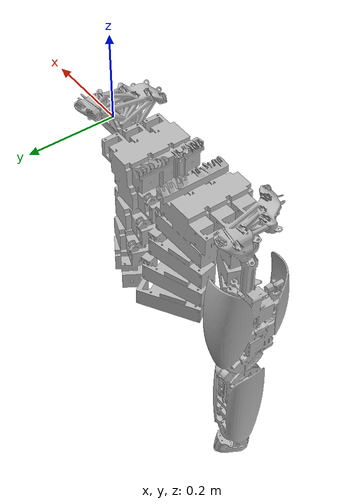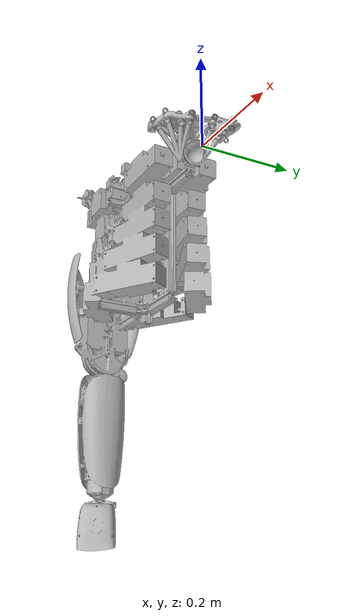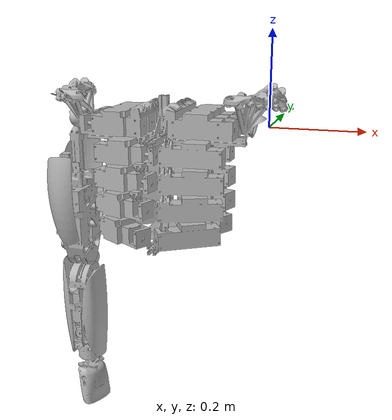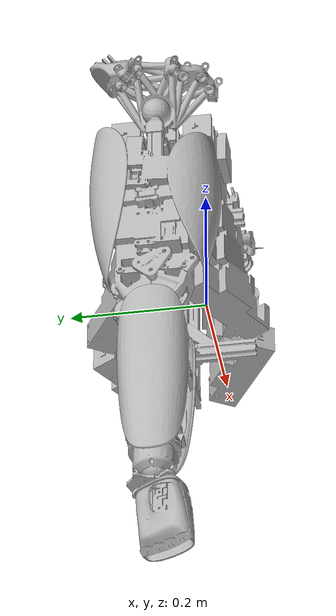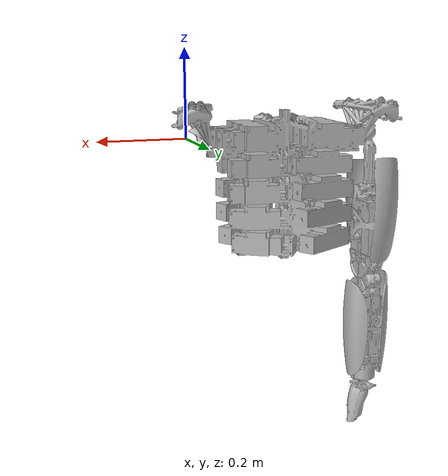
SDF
<sdf version="1.6">
	<model name="right_arm">
		<link name="torso">
			<self_collide>false</self_collide>
			<pose frame="">-0.2356613432450572 0.0004095113515327667 -0.05636108580872436 0.0 -0.0 0.0</pose>
			<inertial>
				<pose frame="">0.0 0.0 0.0 0 0 0</pose>
				<mass>14.620248282022308</mass>
				<inertia>
					<ixx>0.23427531359205855</ixx>
					<ixy>0.0014579355491117724</ixy>
					<ixz>-0.19262693759836189</ixz>
					<iyy>1.2900541406140884</iyy>
					<iyz>-0.004143156810960102</iyz>
					<izz>1.1150542050540775</izz>
				</inertia>
			</inertial>
			<collision name="torso_collision">
				<geometry>
					<mesh>
						<uri>model://right_arm/meshes/collisions/torso.stl</uri>
						<scale>0.001 0.001 0.001</scale>
					</mesh>
				</geometry>
			</collision>
			<visual name="torso_visual">
				<geometry>
					<mesh>
						<uri>model://right_arm/meshes/visuals/torso.stl</uri>
						<scale>0.001 0.001 0.001</scale>
					</mesh>
				</geometry>
			</visual>
		</link>
		<link name="upper_arm">
			<self_collide>false</self_collide>
			<pose frame="">-0.4606423102753464 -0.0005403633331535517 -0.21058376160501763 0.0 -0.0 0.0</pose>
			<inertial>
				<pose frame="">0.0 0.0 0.0 0 0 0</pose>
				<mass>1.6107710429284596</mass>
				<inertia>
					<ixx>0.08039547528185673</ixx>
					<ixy>-0.00044122263338615446</ixy>
					<ixz>-0.15603847010888547</ixz>
					<iyy>0.4210036019895847</iyy>
					<iyz>-0.0007419455778243127</iyz>
					<izz>0.3442627310424434</izz>
				</inertia>
			</inertial>
			<collision name="upper_arm_collision">
				<geometry>
					<mesh>
						<uri>model://right_arm/meshes/collisions/upper_arm.stl</uri>
						<scale>0.001 0.001 0.001</scale>
					</mesh>
				</geometry>
			</collision>
			<visual name="upper_arm_visual">
				<geometry>
					<mesh>
						<uri>model://right_arm/meshes/visuals/upper_arm.stl</uri>
						<scale>0.001 0.001 0.001</scale>
					</mesh>
				</geometry>
			</visual>
		</link>
		<link name="elbow">
			<self_collide>false</self_collide>
			<pose frame="">-0.44864256393906743 0.030253483134971674 -0.3553403683418837 0.0 -0.0 0.0</pose>
			<inertial>
				<pose frame="">0.0 0.0 0.0 0 0 0</pose>
				<mass>0.035913480602683824</mass>
				<inertia>
					<ixx>0.004589960085594564</ixx>
					<ixy>0.0004888674766497429</ixy>
					<ixz>-0.00572535532185871</ixz>
					<iyy>0.011778430725057177</iyy>
					<iyz>0.00038601178892672355</iyz>
					<izz>0.007275132898623602</izz>
				</inertia>
			</inertial>
			<collision name="elbow_collision">
				<geometry>
					<mesh>
						<uri>model://right_arm/meshes/collisions/elbow.stl</uri>
						<scale>0.001 0.001 0.001</scale>
					</mesh>
				</geometry>
			</collision>
			<visual name="elbow_visual">
				<geometry>
					<mesh>
						<uri>model://right_arm/meshes/visuals/elbow.stl</uri>
						<scale>0.001 0.001 0.001</scale>
					</mesh>
				</geometry>
			</visual>
		</link>
		<link name="lower_arm">
			<self_collide>false</self_collide>
			<pose frame="">-0.44644014339107224 -0.0027170871429007264 -0.5583060041108712 0.0 -0.0 0.0</pose>
			<inertial>
				<pose frame="">0.0 0.0 0.0 0 0 0</pose>
				<mass>2.0455605412131046</mass>
				<inertia>
					<ixx>0.6621894157798561</ixx>
					<ixy>-0.002530770204603198</ixy>
					<ixz>-0.5091607427935234</ixz>
					<iyy>1.0696876913582016</iyy>
					<iyz>-0.00405789227238752</iyz>
					<izz>0.4093816108713452</izz>
				</inertia>
			</inertial>
			<collision name="lower_arm_collision">
				<geometry>
					<mesh>
						<uri>model://right_arm/meshes/collisions/lower_arm.stl</uri>
						<scale>0.001 0.001 0.001</scale>
					</mesh>
				</geometry>
			</collision>
			<visual name="lower_arm_visual">
				<geometry>
					<mesh>
						<uri>model://right_arm/meshes/visuals/lower_arm.stl</uri>
						<scale>0.001 0.001 0.001</scale>
					</mesh>
				</geometry>
			</visual>
		</link>
		<link name="shoulder_right_link1">
			<self_collide>false</self_collide>
			<pose frame="">-0.4428789810806611 0.000212154754077551 0.00023980058436872886 0.0 -0.0 0.0</pose>
			<inertial>
				<pose frame="">0.0 0.0 0.0 0 0 0</pose>
				<mass>0.09036362653441249</mass>
				<inertia>
					<ixx>7.100858132936025e-06</ixx>
					<ixy>8.490465260946267e-06</ixy>
					<ixz>9.596855559470765e-06</ixz>
					<iyy>0.01773118042040856</iyy>
					<iyz>-4.597234499972153e-09</iyz>
					<izz>0.01773117929134391</izz>
				</inertia>
			</inertial>
			<collision name="shoulder_right_link1_collision">
				<geometry>
					<mesh>
						<uri>model://right_arm/meshes/collisions/shoulder_right_link1.stl</uri>
						<scale>0.001 0.001 0.001</scale>
					</mesh>
				</geometry>
			</collision>
			<visual name="shoulder_right_link1_visual">
				<geometry>
					<mesh>
						<uri>model://right_arm/meshes/visuals/shoulder_right_link1.stl</uri>
						<scale>0.001 0.001 0.001</scale>
					</mesh>
				</geometry>
			</visual>
		</link>
		<link name="shoulder_right_link2">
			<self_collide>false</self_collide>
			<pose frame="">-0.4428789810806621 0.00021215475407754565 0.000239800584367897 0.0 -0.0 0.0</pose>
			<inertial>
				<pose frame="">0.0 0.0 0.0 0 0 0</pose>
				<mass>0.007113171768014984</mass>
				<inertia>
					<ixx>1.0326132814597322e-07</ixx>
					<ixy>6.683456619403606e-07</ixy>
					<ixz>7.554376096350275e-07</ixz>
					<iyy>0.0013952931977171974</iyy>
					<iyz>-3.6188143294127446e-10</iyz>
					<izz>0.0013952931088403884</izz>
				</inertia>
			</inertial>
			<collision name="shoulder_right_link2_collision">
				<geometry>
					<mesh>
						<uri>model://right_arm/meshes/collisions/shoulder_right_link2.stl</uri>
						<scale>0.001 0.001 0.001</scale>
					</mesh>
				</geometry>
			</collision>
			<visual name="shoulder_right_link2_visual">
				<geometry>
					<mesh>
						<uri>model://right_arm/meshes/visuals/shoulder_right_link2.stl</uri>
						<scale>0.001 0.001 0.001</scale>
					</mesh>
				</geometry>
			</visual>
		</link>
		<joint name="elbow_joint_0" type="revolute">
			<parent>upper_arm</parent>
			<child>elbow</child>
			<pose frame="">0.00694256393906727 -0.030253483134971847 0.04363907925784161 0 0 0</pose>
			<axis>
				<xyz>-1.0 6.162975822039155e-33 -3.399077683617213e-33</xyz>
				<limit>
					<lower>0.0</lower>
					<upper>1.0</upper>
				</limit>
				<use_parent_model_frame>0</use_parent_model_frame>
			</axis>
		</joint>
		<joint name="elbow_joint_1" type="revolute">
			<parent>elbow</parent>
			<child>lower_arm</child>
			<pose frame="">0.0029669200863676084 0.002717087142900552 0.15760471502682882 0 0 0</pose>
			<axis>
				<xyz>1.0 -6.162975822039155e-33 -1.1934897514720318e-14</xyz>
				<limit>
					<lower>0.0</lower>
					<upper>1.0</upper>
				</limit>
				<use_parent_model_frame>0</use_parent_model_frame>
			</axis>
		</joint>
		<joint name="shoulder_right_axis0" type="revolute">
			<parent>torso</parent>
			<child>shoulder_right_link1</child>
			<pose frame="">-3.552713678800501e-16 5.063310881681104e-16 9.891393260019755e-17 0 0 0</pose>
			<axis>
				<xyz>0.9743700647852385 2.455559402795019e-15 -0.22495105434386556</xyz>
				<limit>
					<lower>-3.141592653589793</lower>
					<upper>3.141592653589793</upper>
				</limit>
				<use_parent_model_frame>0</use_parent_model_frame>
			</axis>
		</joint>
		<joint name="shoulder_right_axis1" type="revolute">
			<parent>shoulder_right_link1</parent>
			<child>shoulder_right_link2</child>
			<pose frame="">9.947598300641404e-16 2.7026991755718655e-17 7.797928969210943e-16 0 0 0</pose>
			<axis>
				<xyz>1.226605391410805e-15 -1.0000000000000002 9.709926974923143e-16</xyz>
				<limit>
					<lower>-3.141592653589793</lower>
					<upper>3.141592653589793</upper>
				</limit>
				<use_parent_model_frame>0</use_parent_model_frame>
			</axis>
		</joint>
		<joint name="shoulder_right_axis2" type="revolute">
			<parent>shoulder_right_link2</parent>
			<child>upper_arm</child>
			<pose frame="">0.017763329194684232 0.0007525180872311188 0.2108235621893855 0 0 0</pose>
			<axis>
				<xyz>-0.2249510543438651 -5.030698080332758e-16 -0.9743700647852358</xyz>
				<limit>
					<lower>-3.141592653589793</lower>
					<upper>3.141592653589793</upper>
				</limit>
				<use_parent_model_frame>0</use_parent_model_frame>
			</axis>
		</joint>
		<plugin filename="libcardsflow_gazebo_plugin.so" name="cardsflow_gazebo_plugin" />
	</model>
</sdf>
